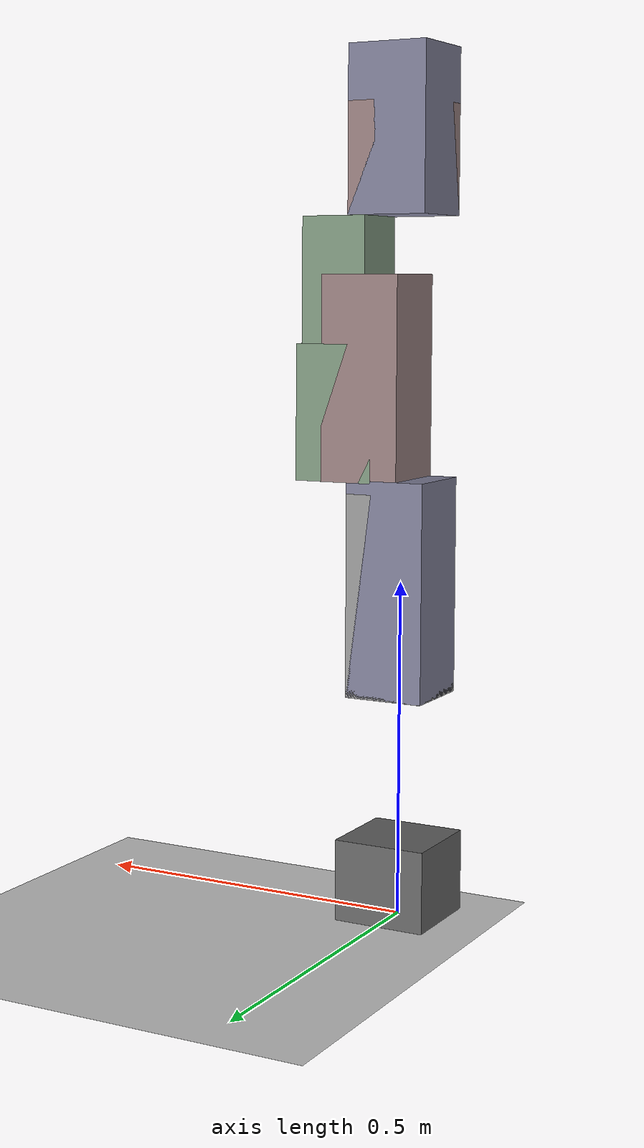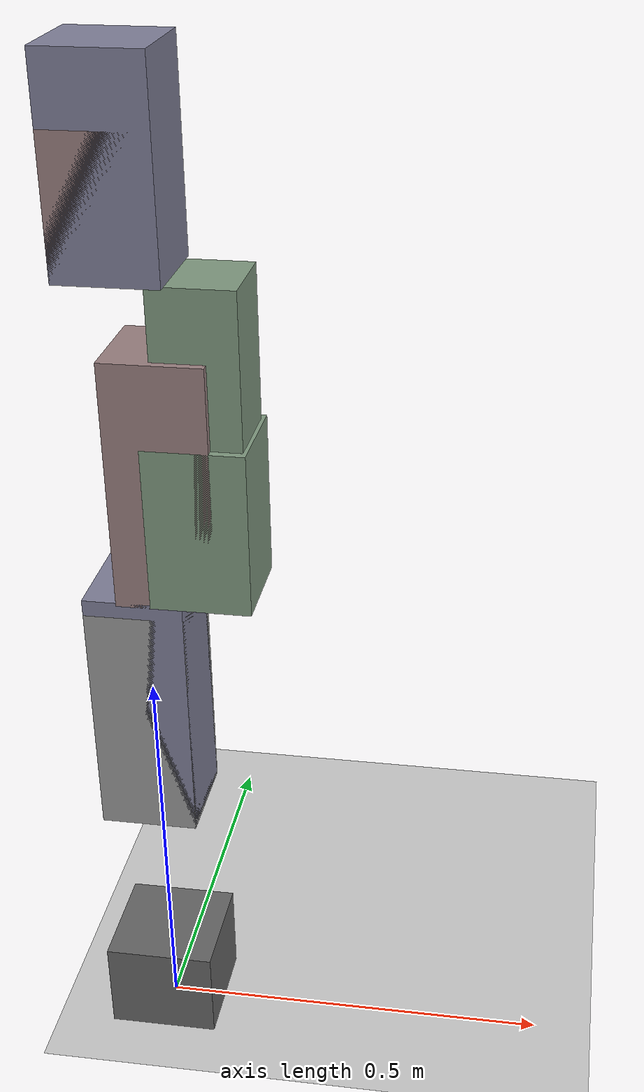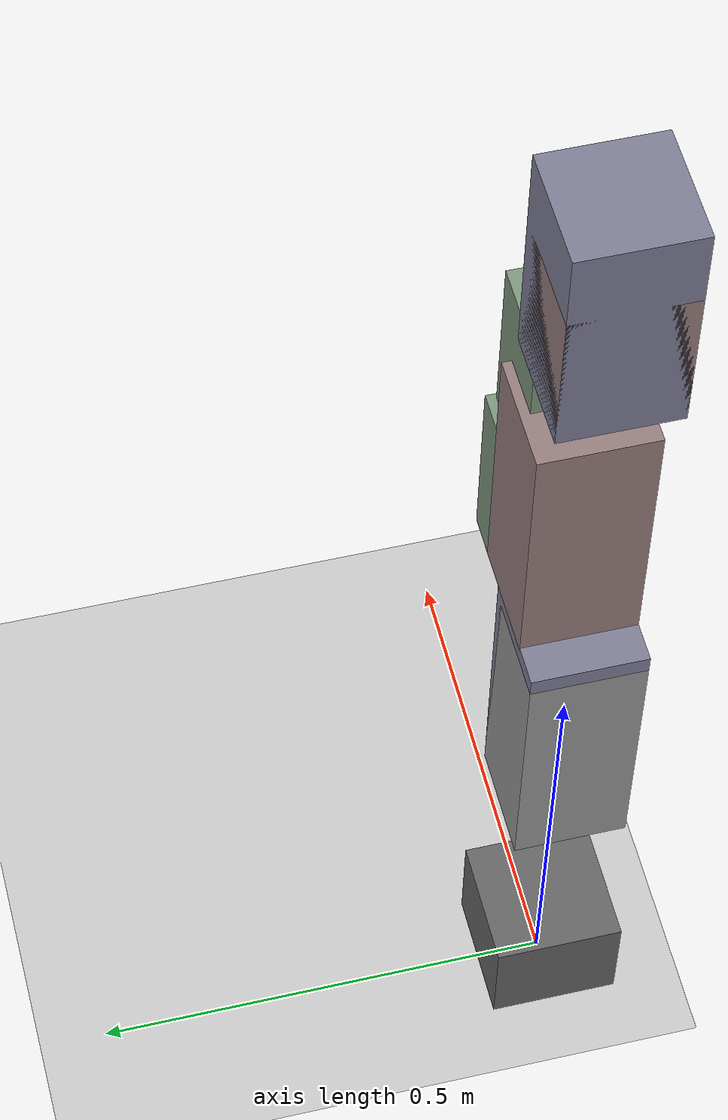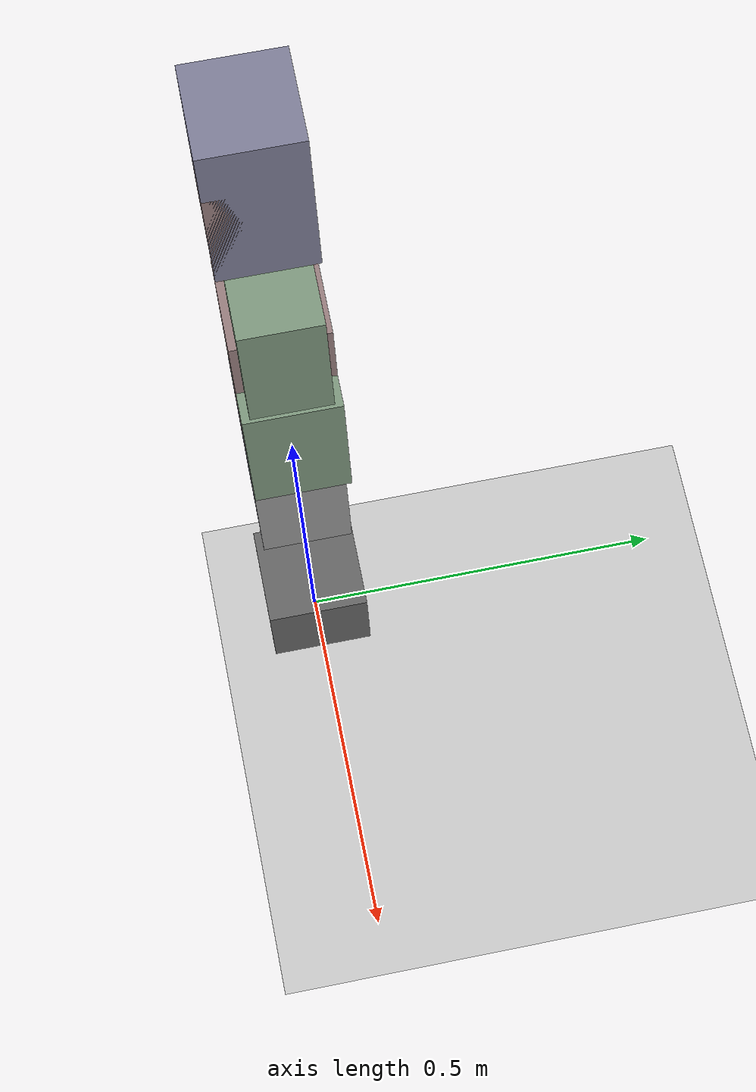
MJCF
<mujoco model="panda">
  <compiler angle="radian" autolimits="true"/>

  <worldbody>
    <geom name="floor" type="plane" size="2 2 0.1" pos="0 0 0" rgba="0.8 0.8 0.8 1" contype="0" conaffinity="0"/>

    <!-- Base -->
    <body name="panda_link0" pos="0 0 0">
      <geom type="box" size="0.07 0.07 0.07" pos="0 0 0.05" rgba="0.4 0.4 0.4 1"/>
      <body name="panda_link1" pos="0 0 0.333">
        <joint name="panda_joint1" type="hinge" pos="0 0 0" axis="0 0 1" range="-2.8973 2.8973"/>
        <geom type="box" size="0.06 0.06 0.15" pos="0 0 0.15" rgba="0.6 0.6 0.6 1"/>
        <body name="panda_link2" quat="0.707107 -0.707107 0 0">
          <joint name="panda_joint2" type="hinge" pos="0 0 0" axis="0 0 1" range="-1.7628 1.7628"/>
          <geom type="box" size="0.06 0.16 0.06" pos="0 -0.16 0" rgba="0.5 0.5 0.6 1"/>
          <body name="panda_link3" pos="0 -0.316 0" quat="0.707107 0.707107 0 0">
            <joint name="panda_joint3" type="hinge" pos="0 0 0" axis="0 0 1" range="-2.8973 2.8973"/>
            <geom type="box" size="0.06 0.06 0.15" pos="0.04125 0 0.15" rgba="0.6 0.5 0.5 1"/>
            <body name="panda_link4" pos="0.0825 0 0" quat="0.707107 0.707107 0 0">
              <joint name="panda_joint4" type="hinge" pos="0 0 0" axis="0 0 1" range="-3.0718 -0.0698"/>
              <geom type="box" size="0.06 0.10 0.06" pos="0 0.10 0" rgba="0.5 0.6 0.5 1"/>
              <body name="panda_link5" pos="-0.0825 0.384 0" quat="0.707107 -0.707107 0 0">
                <joint name="panda_joint5" type="hinge" pos="0 0 0" axis="0 0 1" range="-2.8973 2.8973"/>
                <geom type="box" size="0.06 0.06 0.12" pos="0 0 0.12" rgba="0.5 0.5 0.6 1"/>
                <body name="panda_link6" quat="0.707107 0.707107 0 0">
                  <joint name="panda_joint6" type="hinge" pos="0 0 0" axis="0 0 1" range="-0.0175 3.7525"/>
                  <geom type="box" size="0.06 0.08 0.06" pos="0 0.08 0" rgba="0.6 0.5 0.5 1"/>
                  <body name="panda_link7" pos="0.088 0 0" quat="0.707107 0.707107 0 0">
                    <joint name="panda_joint7" type="hinge" pos="0 0 0" axis="0 0 1" range="-2.8973 2.8973"/>
                    <geom type="box" size="0.05 0.05 0.10" pos="0 0 0.10" rgba="0.5 0.6 0.5 1"/>
                    <site name="ee_site" pos="0 0 0.2105" quat="0.92388 0 0 -0.382683" size="0.01" rgba="1 0 0 0.5"/>
                    <!-- Fingers -->
                    <body name="panda_leftfinger" pos="0 0 0.1654" quat="0.92388 0 0 -0.382683">
                      <joint name="panda_finger_joint1" type="slide" pos="0 0 0" axis="0 1 0" range="0 0.04"/>
                      <geom type="sphere" size="0.015" pos="0 0.02 0" rgba="0.7 0.7 0.7 1"/>
                    </body>
                    <body name="panda_rightfinger" pos="0 0 0.1654" quat="0.92388 0 0 -0.382683">
                      <joint name="panda_finger_joint2" type="slide" pos="0 0 0" axis="0 -1 0" range="0 0.04"/>
                      <geom type="sphere" size="0.015" pos="0 -0.02 0" rgba="0.7 0.7 0.7 1"/>
                    </body>
                  </body>
                </body>
              </body>
            </body>
          </body>
        </body>
      </body>
    </body>

    <!-- Obstacle bodies (up to 10, positioned dynamically) -->
    <body name="obstacle0" mocap="true" pos="0 0 0">
      <geom name="obs0" type="sphere" size="0.03" rgba="1 0 0 0.6"/>
    </body>
    <body name="obstacle1" mocap="true" pos="0 0 0">
      <geom name="obs1" type="sphere" size="0.03" rgba="1 0 0 0.6"/>
    </body>
    <body name="obstacle2" mocap="true" pos="0 0 0">
      <geom name="obs2" type="sphere" size="0.03" rgba="1 0 0 0.6"/>
    </body>
    <body name="obstacle3" mocap="true" pos="0 0 0">
      <geom name="obs3" type="sphere" size="0.03" rgba="1 0 0 0.6"/>
    </body>
    <body name="obstacle4" mocap="true" pos="0 0 0">
      <geom name="obs4" type="sphere" size="0.03" rgba="1 0 0 0.6"/>
    </body>
    <body name="obstacle5" mocap="true" pos="0 0 0">
      <geom name="obs5" type="sphere" size="0.03" rgba="1 0 0 0.6"/>
    </body>
    <body name="obstacle6" mocap="true" pos="0 0 0">
      <geom name="obs6" type="sphere" size="0.03" rgba="1 0 0 0.6"/>
    </body>
    <body name="obstacle7" mocap="true" pos="0 0 0">
      <geom name="obs7" type="sphere" size="0.03" rgba="1 0 0 0.6"/>
    </body>
    <body name="obstacle8" mocap="true" pos="0 0 0">
      <geom name="obs8" type="sphere" size="0.03" rgba="1 0 0 0.6"/>
    </body>
    <body name="obstacle9" mocap="true" pos="0 0 0">
      <geom name="obs9" type="sphere" size="0.03" rgba="1 0 0 0.6"/>
    </body>
  </worldbody>
</mujoco>
